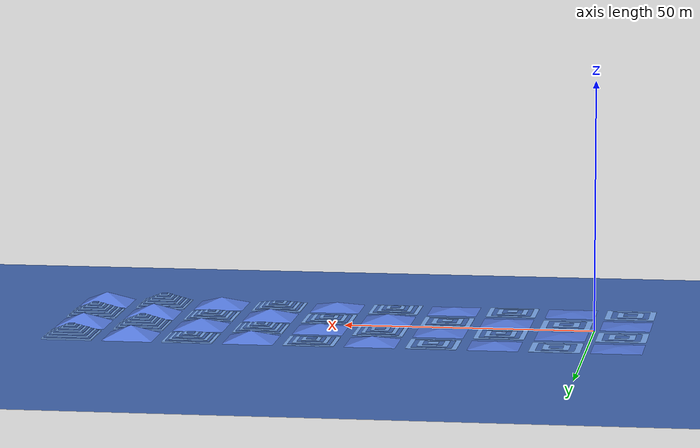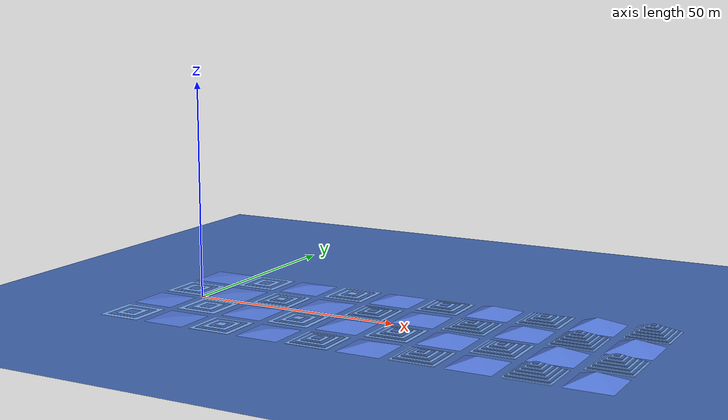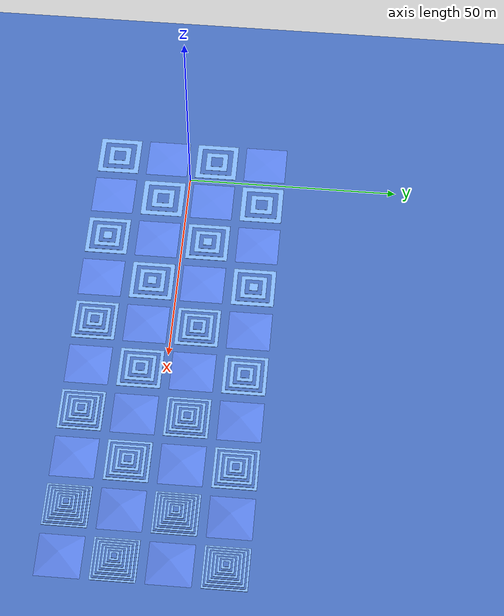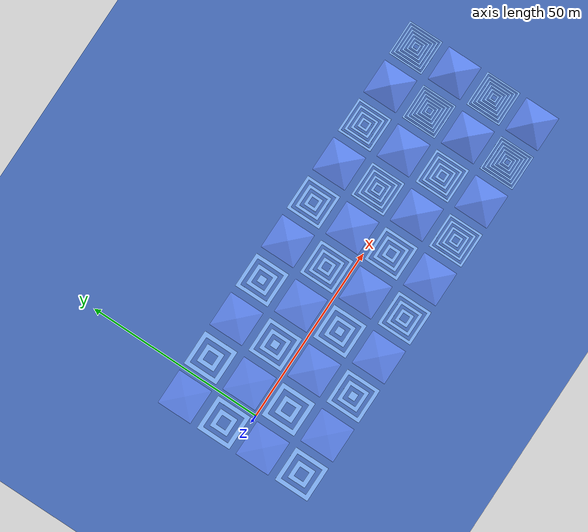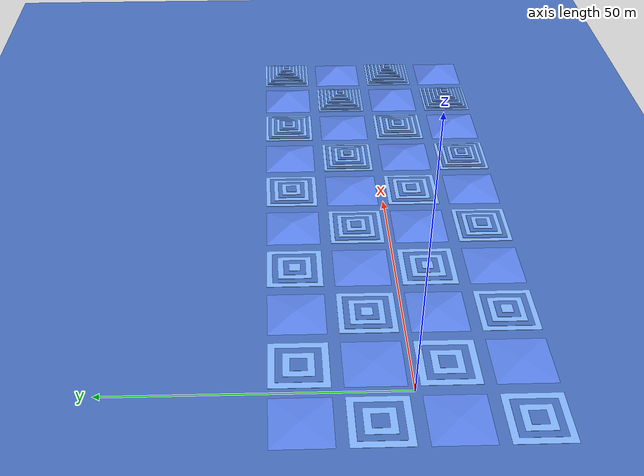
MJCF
<mujoco>
    <extension>
        <plugin plugin="mujoco.sdf.torus">
            <instance name="torus">
                <config key="radius1" value="0.077103"/>
                <config key="radius2" value="0.03"/>
            </instance>
        </plugin>
    </extension>

    <default>
        <default class="kyon_all">
            <joint armature="0.234" frictionloss="4.68" damping="1.7"/>
            <geom condim="3" solref="0.005 1.2" solimp="0.995 0.995 0.001 0.5 2" friction="0.8"/>
        </default>
        <default class="wheels">
            <joint armature="0.234" damping="1.7"/>
            <geom condim="3" solref="0.005 1.2" solimp="0.995 0.995 0.001 0.5 2" friction="0.7 0.005 0.001"/>
        </default>
        <default class="terrain">
            <geom solref="0.004 1.2" solimp="0.995 0.995 0.001 0.5 2" friction="0.7 0.005 0.001" group="1"/>
        </default>
    </default>

    <asset>
        <mesh name="torus">
            <plugin instance="torus"/>
        </mesh>

        <texture type="skybox" builtin="gradient" rgb1="0.3 0.5 0.7" rgb2="0 0 0" width="512" height="3072"/>
        <texture type="cube" name="body" builtin="flat" mark="cross" rgb1="0.8 0.6 0.4" rgb2="0.8 0.6 0.4" markrgb="1 1 1" width="127" height="762"/>
        <texture type="2d" name="grid" builtin="checker" rgb1="0.7 0.8 0.95" rgb2="0.85 0.9 1" width="512" height="512"/>
        <material name="body" texture="body" texuniform="true" rgba="0.8 0.6 0.4 1"/>
        <material name="grid" texture="grid" texuniform="true" rgba="0.5 0.6 0.7 1"/>
        <material name="ground" texture="grid" texuniform="true" rgba="0.35 0.5 0.75 1"/>
        <material name="step_light" texture="grid" texuniform="true" rgba="0.65 0.82 1 1"/>
        <material name="step_dark" texture="grid" texuniform="true" rgba="0.35 0.5 0.75 1"/>
        <material name="slope" texuniform="true" rgba="0.35 0.5 0.9 1"/>
        <mesh name="pyramid_slope_05deg" file="/home/user/forest_ws/src/iit-kyon-ros-pkg/kyon_urdf/meshes/pyramid_slope_05deg_10x10.stl"/>
        <mesh name="pyramid_slope_10deg" file="/home/user/forest_ws/src/iit-kyon-ros-pkg/kyon_urdf/meshes/pyramid_slope_10deg_10x10.stl"/>
        <mesh name="pyramid_slope_15deg" file="/home/user/forest_ws/src/iit-kyon-ros-pkg/kyon_urdf/meshes/pyramid_slope_15deg_10x10.stl"/>
        <mesh name="pyramid_slope_20deg" file="/home/user/forest_ws/src/iit-kyon-ros-pkg/kyon_urdf/meshes/pyramid_slope_20deg_10x10.stl"/>
        <mesh name="pyramid_slope_25deg" file="/home/user/forest_ws/src/iit-kyon-ros-pkg/kyon_urdf/meshes/pyramid_slope_25deg_10x10.stl"/>

    </asset>
    <worldbody>
        <geom name="floor" type="plane" size="0 0 0.05" group="1" material="ground" class="terrain"/>
        <!-- Five pyramidal staircases in a row, increasing step height and decreasing tread width -->
        <!-- Five pyramidal mixed slopes/stairs in a row, increasing difficulty (step height for stairs, slope angle for slopes) -->
        <body name="mixedcourse" pos="0 0 0">
            <!-- Level 0 -->
            <body name="pyramid_lvl0_1" pos="-6 6 0">
                <geom name="lvl0_step_1_0_1" type="box" size="5.0 5.0 0.02" material="step_light" pos="0 0 0.02" class="terrain"/>
                <geom name="lvl0_step_2_0_1" type="box" size="3.8 3.8 0.02" material="step_dark" pos="0 0 0.06" class="terrain"/>
                <geom name="lvl0_step_3_0_1" type="box" size="2.6 2.6 0.02" material="step_light" pos="0 0 0.10" class="terrain"/>
                <geom name="lvl0_step_4_0_1" type="box" size="1.4 1.4 0.02" material="step_dark" pos="0 0 0.14" class="terrain"/>
            </body>
            <body name="pyramid_lvl0_2" pos="-6 -6 0">
                <geom name="lvl0_slope_2" type="mesh" mesh="pyramid_slope_05deg" material="slope" class="terrain"/>
            </body>
            <body name="pyramid_lvl0_3" pos="6 -6 0">
                <geom name="lvl0_step_1_0_3" type="box" size="5.0 5.0 0.02" material="step_light" pos="0 0 0.02" class="terrain"/>
                <geom name="lvl0_step_2_0_3" type="box" size="3.8 3.8 0.02" material="step_dark" pos="0 0 0.06" class="terrain"/>
                <geom name="lvl0_step_3_0_3" type="box" size="2.6 2.6 0.02" material="step_light" pos="0 0 0.10" class="terrain"/>
                <geom name="lvl0_step_4_0_3" type="box" size="1.4 1.4 0.02" material="step_dark" pos="0 0 0.14" class="terrain"/>
            </body>
            <body name="pyramid_lvl0_4" pos="6 6 0">
                <geom name="lvl0_slope_4" type="mesh" mesh="pyramid_slope_05deg" material="slope" class="terrain"/>
            </body>
            <body name="pyramid_lvl0_5" pos="-6 -18 0">
                <geom name="lvl0_step_1_0_5" type="box" size="5.0 5.0 0.02" material="step_light" pos="0 0 0.02" class="terrain"/>
                <geom name="lvl0_step_2_0_5" type="box" size="3.8 3.8 0.02" material="step_dark" pos="0 0 0.06" class="terrain"/>
                <geom name="lvl0_step_3_0_5" type="box" size="2.6 2.6 0.02" material="step_light" pos="0 0 0.10" class="terrain"/>
                <geom name="lvl0_step_4_0_5" type="box" size="1.4 1.4 0.02" material="step_dark" pos="0 0 0.14" class="terrain"/>
            </body>
            <body name="pyramid_lvl0_6" pos="6 -18 0">
                <geom name="lvl0_slope_6" type="mesh" mesh="pyramid_slope_05deg" material="slope" class="terrain"/>
            </body>
            <body name="pyramid_lvl0_7" pos="6 18 0">
                <geom name="lvl0_step_1_0_7" type="box" size="5.0 5.0 0.02" material="step_light" pos="0 0 0.02" class="terrain"/>
                <geom name="lvl0_step_2_0_7" type="box" size="3.8 3.8 0.02" material="step_dark" pos="0 0 0.06" class="terrain"/>
                <geom name="lvl0_step_3_0_7" type="box" size="2.6 2.6 0.02" material="step_light" pos="0 0 0.10" class="terrain"/>
                <geom name="lvl0_step_4_0_7" type="box" size="1.4 1.4 0.02" material="step_dark" pos="0 0 0.14" class="terrain"/>
            </body>
            <body name="pyramid_lvl0_8" pos="-6 18 0">
                <geom name="lvl0_slope_8" type="mesh" mesh="pyramid_slope_05deg" material="slope" class="terrain"/>
            </body>
            <!-- Level 1 -->
            <body name="pyramid_lvl1_1" pos="18 6 0">
                <geom name="lvl1_step_1_1" type="box" size="5.0 5.0 0.04" material="step_light" pos="0 0 0.04" class="terrain"/>
                <geom name="lvl1_step_2_1" type="box" size="4.0 4.0 0.04" material="step_dark" pos="0 0 0.12" class="terrain"/>
                <geom name="lvl1_step_3_1" type="box" size="3.0 3.0 0.04" material="step_light" pos="0 0 0.20" class="terrain"/>
                <geom name="lvl1_step_4_1" type="box" size="2.0 2.0 0.04" material="step_dark" pos="0 0 0.28" class="terrain"/>
                <geom name="lvl1_step_5_1" type="box" size="1.0 1.0 0.04" material="step_light" pos="0 0 0.36" class="terrain"/>
            </body>
            <body name="pyramid_lvl1_2" pos="18 -6 0">
                <geom name="lvl1_slope_2" type="mesh" mesh="pyramid_slope_10deg" material="slope" class="terrain"/>
            </body>
            <body name="pyramid_lvl1_3" pos="30 -6 0">
                <geom name="lvl1_step_1_1_3" type="box" size="5.0 5.0 0.04" material="step_light" pos="0 0 0.04" class="terrain"/>
                <geom name="lvl1_step_2_1_3" type="box" size="4.0 4.0 0.04" material="step_dark" pos="0 0 0.12" class="terrain"/>
                <geom name="lvl1_step_3_1_3" type="box" size="3.0 3.0 0.04" material="step_light" pos="0 0 0.20" class="terrain"/>
                <geom name="lvl1_step_4_1_3" type="box" size="2.0 2.0 0.04" material="step_dark" pos="0 0 0.28" class="terrain"/>
                <geom name="lvl1_step_5_1_3" type="box" size="1.0 1.0 0.04" material="step_light" pos="0 0 0.36" class="terrain"/>
            </body>
            <body name="pyramid_lvl1_4" pos="30 6 0">
                <geom name="lvl1_slope_4" type="mesh" mesh="pyramid_slope_10deg" material="slope" class="terrain"/>
            </body>
            <body name="pyramid_lvl1_5" pos="18 18 0">
                <geom name="lvl1_slope_5" type="mesh" mesh="pyramid_slope_10deg" material="slope" class="terrain"/>
            </body>
            <body name="pyramid_lvl1_6" pos="30 18 0">
                <geom name="lvl1_step_1_1_6" type="box" size="5.0 5.0 0.04" material="step_light" pos="0 0 0.04" class="terrain"/>
                <geom name="lvl1_step_2_1_6" type="box" size="4.0 4.0 0.04" material="step_dark" pos="0 0 0.12" class="terrain"/>
                <geom name="lvl1_step_3_1_6" type="box" size="3.0 3.0 0.04" material="step_light" pos="0 0 0.20" class="terrain"/>
                <geom name="lvl1_step_4_1_6" type="box" size="2.0 2.0 0.04" material="step_dark" pos="0 0 0.28" class="terrain"/>
                <geom name="lvl1_step_5_1_6" type="box" size="1.0 1.0 0.04" material="step_light" pos="0 0 0.36" class="terrain"/>
            </body>
            <body name="pyramid_lvl1_7" pos="18 -18 0">
                <geom name="lvl1_step_1_1_7" type="box" size="5.0 5.0 0.04" material="step_light" pos="0 0 0.04" class="terrain"/>
                <geom name="lvl1_step_2_1_7" type="box" size="4.0 4.0 0.04" material="step_dark" pos="0 0 0.12" class="terrain"/>
                <geom name="lvl1_step_3_1_7" type="box" size="3.0 3.0 0.04" material="step_light" pos="0 0 0.20" class="terrain"/>
                <geom name="lvl1_step_4_1_7" type="box" size="2.0 2.0 0.04" material="step_dark" pos="0 0 0.28" class="terrain"/>
                <geom name="lvl1_step_5_1_7" type="box" size="1.0 1.0 0.04" material="step_light" pos="0 0 0.36" class="terrain"/>
            </body>
            <body name="pyramid_lvl1_8" pos="30 -18 0">
                <geom name="lvl1_slope_8" type="mesh" mesh="pyramid_slope_10deg" material="slope" class="terrain"/>
            </body>
            <!-- Level 2: medium risers, tighter treads, more steps -->
            <body name="pyramid_lvl2_1" pos="42 -6 0">
                <geom name="lvl2_slope_1" type="mesh" mesh="pyramid_slope_15deg" material="slope" class="terrain"/>
            </body>
            <body name="pyramid_lvl2_2" pos="42 6 0">
                <geom name="lvl2_step_1_2_2" type="box" size="5.0 5.0 0.06" material="step_light" pos="0 0 0.06" class="terrain"/>
                <geom name="lvl2_step_2_2_2" type="box" size="4.2 4.2 0.06" material="step_dark" pos="0 0 0.18" class="terrain"/>
                <geom name="lvl2_step_3_2_2" type="box" size="3.4 3.4 0.06" material="step_light" pos="0 0 0.30" class="terrain"/>
                <geom name="lvl2_step_4_2_2" type="box" size="2.6 2.6 0.06" material="step_dark" pos="0 0 0.42" class="terrain"/>
                <geom name="lvl2_step_5_2_2" type="box" size="1.8 1.8 0.06" material="step_light" pos="0 0 0.54" class="terrain"/>
                <geom name="lvl2_step_6_2_2" type="box" size="1.0 1.0 0.06" material="step_dark" pos="0 0 0.66" class="terrain"/>
            </body>
            <body name="pyramid_lvl2_3" pos="54 -6 0">
                <geom name="lvl2_step_1_2_3" type="box" size="5.0 5.0 0.06" material="step_light" pos="0 0 0.06" class="terrain"/>
                <geom name="lvl2_step_2_2_3" type="box" size="4.2 4.2 0.06" material="step_dark" pos="0 0 0.18" class="terrain"/>
                <geom name="lvl2_step_3_2_3" type="box" size="3.4 3.4 0.06" material="step_light" pos="0 0 0.30" class="terrain"/>
                <geom name="lvl2_step_4_2_3" type="box" size="2.6 2.6 0.06" material="step_dark" pos="0 0 0.42" class="terrain"/>
                <geom name="lvl2_step_5_2_3" type="box" size="1.8 1.8 0.06" material="step_light" pos="0 0 0.54" class="terrain"/>
                <geom name="lvl2_step_6_2_3" type="box" size="1.0 1.0 0.06" material="step_dark" pos="0 0 0.66" class="terrain"/>
            </body>
            <body name="pyramid_lvl2_4" pos="54 6 0">
                <geom name="lvl2_slope_4" type="mesh" mesh="pyramid_slope_15deg" material="slope" class="terrain"/>
            </body>
            <body name="pyramid_lvl2_5" pos="42 18 0">
                <geom name="lvl2_slope_5" type="mesh" mesh="pyramid_slope_15deg" material="slope" class="terrain"/>
            </body>
            <body name="pyramid_lvl2_6" pos="54 18 0">
                <geom name="lvl2_step_1_2_6" type="box" size="5.0 5.0 0.06" material="step_light" pos="0 0 0.06" class="terrain"/>
                <geom name="lvl2_step_2_2_6" type="box" size="4.2 4.2 0.06" material="step_dark" pos="0 0 0.18" class="terrain"/>
                <geom name="lvl2_step_3_2_6" type="box" size="3.4 3.4 0.06" material="step_light" pos="0 0 0.30" class="terrain"/>
                <geom name="lvl2_step_4_2_6" type="box" size="2.6 2.6 0.06" material="step_dark" pos="0 0 0.42" class="terrain"/>
                <geom name="lvl2_step_5_2_6" type="box" size="1.8 1.8 0.06" material="step_light" pos="0 0 0.54" class="terrain"/>
                <geom name="lvl2_step_6_2_6" type="box" size="1.0 1.0 0.06" material="step_dark" pos="0 0 0.66" class="terrain"/>
            </body>
            <body name="pyramid_lvl2_7" pos="42 -18 0">
                <geom name="lvl2_step_1_2_7" type="box" size="5.0 5.0 0.06" material="step_light" pos="0 0 0.06" class="terrain"/>
                <geom name="lvl2_step_2_2_7" type="box" size="4.2 4.2 0.06" material="step_dark" pos="0 0 0.18" class="terrain"/>
                <geom name="lvl2_step_3_2_7" type="box" size="3.4 3.4 0.06" material="step_light" pos="0 0 0.30" class="terrain"/>
                <geom name="lvl2_step_4_2_7" type="box" size="2.6 2.6 0.06" material="step_dark" pos="0 0 0.42" class="terrain"/>
                <geom name="lvl2_step_5_2_7" type="box" size="1.8 1.8 0.06" material="step_light" pos="0 0 0.54" class="terrain"/>
                <geom name="lvl2_step_6_2_7" type="box" size="1.0 1.0 0.06" material="step_dark" pos="0 0 0.66" class="terrain"/>
            </body>
            <body name="pyramid_lvl2_8" pos="54 -18 0">
                <geom name="lvl2_slope_8" type="mesh" mesh="pyramid_slope_15deg" material="slope" class="terrain"/>
            </body>
            <!-- Level 3: high risers, minimal tread width, six steps -->
            <body name="pyramid_lvl3_1" pos="66 6 0">
                <geom name="lvl3_step_1_3_1" type="box" size="5.0 5.0 0.08" material="step_light" pos="0 0 0.08" class="terrain"/>
                <geom name="lvl3_step_2_3_1" type="box" size="4.4 4.4 0.08" material="step_dark" pos="0 0 0.24" class="terrain"/>
                <geom name="lvl3_step_3_3_1" type="box" size="3.8 3.8 0.08" material="step_light" pos="0 0 0.40" class="terrain"/>
                <geom name="lvl3_step_4_3_1" type="box" size="3.2 3.2 0.08" material="step_dark" pos="0 0 0.56" class="terrain"/>
                <geom name="lvl3_step_5_3_1" type="box" size="2.6 2.6 0.08" material="step_light" pos="0 0 0.72" class="terrain"/>
                <geom name="lvl3_step_6_3_1" type="box" size="2.0 2.0 0.08" material="step_dark" pos="0 0 0.88" class="terrain"/>
                <geom name="lvl3_step_7_3_1" type="box" size="1.4 1.4 0.08" material="step_light" pos="0 0 1.04" class="terrain"/>
                <geom name="lvl3_step_8_3_1" type="box" size="0.8 0.8 0.08" material="step_dark" pos="0 0 1.20" class="terrain"/>
            </body>
            <body name="pyramid_lvl3_2" pos="66 -6 0">
                <geom name="lvl3_slope_2" type="mesh" mesh="pyramid_slope_20deg" material="slope" class="terrain"/>
            </body>
            <body name="pyramid_lvl3_3" pos="78 6 0">
                <geom name="lvl3_slope_3" type="mesh" mesh="pyramid_slope_20deg" material="slope" class="terrain"/>
            </body>
            <body name="pyramid_lvl3_4" pos="78 -6 0">
                <geom name="lvl3_step_1_3_4" type="box" size="5.0 5.0 0.08" material="step_light" pos="0 0 0.08" class="terrain"/>
                <geom name="lvl3_step_2_3_4" type="box" size="4.4 4.4 0.08" material="step_dark" pos="0 0 0.24" class="terrain"/>
                <geom name="lvl3_step_3_3_4" type="box" size="3.8 3.8 0.08" material="step_light" pos="0 0 0.40" class="terrain"/>
                <geom name="lvl3_step_4_3_4" type="box" size="3.2 3.2 0.08" material="step_dark" pos="0 0 0.56" class="terrain"/>
                <geom name="lvl3_step_5_3_4" type="box" size="2.6 2.6 0.08" material="step_light" pos="0 0 0.72" class="terrain"/>
                <geom name="lvl3_step_6_3_4" type="box" size="2.0 2.0 0.08" material="step_dark" pos="0 0 0.88" class="terrain"/>
                <geom name="lvl3_step_7_3_4" type="box" size="1.4 1.4 0.08" material="step_light" pos="0 0 1.04" class="terrain"/>
                <geom name="lvl3_step_8_3_4" type="box" size="0.8 0.8 0.08" material="step_dark" pos="0 0 1.20" class="terrain"/>
            </body>
            <body name="pyramid_lvl3_5" pos="66 18 0">
                <geom name="lvl3_slope_5" type="mesh" mesh="pyramid_slope_20deg" material="slope" class="terrain"/>
            </body>
            <body name="pyramid_lvl3_6" pos="78 18 0">
                <geom name="lvl3_step_1_3_6" type="box" size="5.0 5.0 0.08" material="step_light" pos="0 0 0.08" class="terrain"/>
                <geom name="lvl3_step_2_3_6" type="box" size="4.4 4.4 0.08" material="step_dark" pos="0 0 0.24" class="terrain"/>
                <geom name="lvl3_step_3_3_6" type="box" size="3.8 3.8 0.08" material="step_light" pos="0 0 0.40" class="terrain"/>
                <geom name="lvl3_step_4_3_6" type="box" size="3.2 3.2 0.08" material="step_dark" pos="0 0 0.56" class="terrain"/>
                <geom name="lvl3_step_5_3_6" type="box" size="2.6 2.6 0.08" material="step_light" pos="0 0 0.72" class="terrain"/>
                <geom name="lvl3_step_6_3_6" type="box" size="2.0 2.0 0.08" material="step_dark" pos="0 0 0.88" class="terrain"/>
                <geom name="lvl3_step_7_3_6" type="box" size="1.4 1.4 0.08" material="step_light" pos="0 0 1.04" class="terrain"/>
                <geom name="lvl3_step_8_3_6" type="box" size="0.8 0.8 0.08" material="step_dark" pos="0 0 1.20" class="terrain"/>
            </body>
            <body name="pyramid_lvl3_7" pos="66 -18 0">
                <geom name="lvl3_step_1_3_7" type="box" size="5.0 5.0 0.08" material="step_light" pos="0 0 0.08" class="terrain"/>
                <geom name="lvl3_step_2_3_7" type="box" size="4.4 4.4 0.08" material="step_dark" pos="0 0 0.24" class="terrain"/>
                <geom name="lvl3_step_3_3_7" type="box" size="3.8 3.8 0.08" material="step_light" pos="0 0 0.40" class="terrain"/>
                <geom name="lvl3_step_4_3_7" type="box" size="3.2 3.2 0.08" material="step_dark" pos="0 0 0.56" class="terrain"/>
                <geom name="lvl3_step_5_3_7" type="box" size="2.6 2.6 0.08" material="step_light" pos="0 0 0.72" class="terrain"/>
                <geom name="lvl3_step_6_3_7" type="box" size="2.0 2.0 0.08" material="step_dark" pos="0 0 0.88" class="terrain"/>
                <geom name="lvl3_step_7_3_7" type="box" size="1.4 1.4 0.08" material="step_light" pos="0 0 1.04" class="terrain"/>
                <geom name="lvl3_step_8_3_7" type="box" size="0.8 0.8 0.08" material="step_dark" pos="0 0 1.20" class="terrain"/>
            </body>
            <body name="pyramid_lvl3_8" pos="78 -18 0">
                <geom name="lvl3_slope_8" type="mesh" mesh="pyramid_slope_20deg" material="slope" class="terrain"/>
            </body>
            <!-- Level 4: extreme risers, very tight treads, seven steps -->
            <body name="pyramid_lvl4_1" pos="90 6 0">
                <geom name="lvl4_step_1_4_1" type="box" size="5.0 5.0 0.1" material="step_light" pos="0 0 0.10" class="terrain"/>
                <geom name="lvl4_step_2_4_1" type="box" size="4.6 4.6 0.1" material="step_dark" pos="0 0 0.30" class="terrain"/>
                <geom name="lvl4_step_3_4_1" type="box" size="4.2 4.2 0.1" material="step_light" pos="0 0 0.50" class="terrain"/>
                <geom name="lvl4_step_4_4_1" type="box" size="3.8 3.8 0.1" material="step_dark" pos="0 0 0.70" class="terrain"/>
                <geom name="lvl4_step_5_4_1" type="box" size="3.4 3.4 0.1" material="step_light" pos="0 0 0.90" class="terrain"/>
                <geom name="lvl4_step_6_4_1" type="box" size="3.0 3.0 0.1" material="step_dark" pos="0 0 1.10" class="terrain"/>
                <geom name="lvl4_step_7_4_1" type="box" size="2.6 2.6 0.1" material="step_light" pos="0 0 1.30" class="terrain"/>
                <geom name="lvl4_step_8_4_1" type="box" size="2.2 2.2 0.1" material="step_dark" pos="0 0 1.50" class="terrain"/>
                <geom name="lvl4_step_9_4_1" type="box" size="1.8 1.8 0.1" material="step_light" pos="0 0 1.70" class="terrain"/>
                <geom name="lvl4_step_10_4_1" type="box" size="1.4 1.4 0.1" material="step_dark" pos="0 0 1.90" class="terrain"/>
                <geom name="lvl4_step_11_4_1" type="box" size="1.0 1.0 0.1" material="step_light" pos="0 0 2.10" class="terrain"/>
                <geom name="lvl4_step_12_4_1" type="box" size="0.6 0.6 0.1" material="step_dark" pos="0 0 2.30" class="terrain"/>
            </body>
            <body name="pyramid_lvl4_2" pos="90 -6 0">
                <geom name="lvl4_slope_2" type="mesh" mesh="pyramid_slope_25deg" material="slope" class="terrain"/>
            </body>
            <body name="pyramid_lvl4_3" pos="102 6 0">
                <geom name="lvl4_slope_3" type="mesh" mesh="pyramid_slope_25deg" material="slope" class="terrain"/>
            </body>
            <body name="pyramid_lvl4_4" pos="102 -6 0">
                <geom name="lvl4_step_1_4_4" type="box" size="5.0 5.0 0.1" material="step_light" pos="0 0 0.10" class="terrain"/>
                <geom name="lvl4_step_2_4_4" type="box" size="4.6 4.6 0.1" material="step_dark" pos="0 0 0.30" class="terrain"/>
                <geom name="lvl4_step_3_4_4" type="box" size="4.2 4.2 0.1" material="step_light" pos="0 0 0.50" class="terrain"/>
                <geom name="lvl4_step_4_4_4" type="box" size="3.8 3.8 0.1" material="step_dark" pos="0 0 0.70" class="terrain"/>
                <geom name="lvl4_step_5_4_4" type="box" size="3.4 3.4 0.1" material="step_light" pos="0 0 0.90" class="terrain"/>
                <geom name="lvl4_step_6_4_4" type="box" size="3.0 3.0 0.1" material="step_dark" pos="0 0 1.10" class="terrain"/>
                <geom name="lvl4_step_7_4_4" type="box" size="2.6 2.6 0.1" material="step_light" pos="0 0 1.30" class="terrain"/>
                <geom name="lvl4_step_8_4_4" type="box" size="2.2 2.2 0.1" material="step_dark" pos="0 0 1.50" class="terrain"/>
                <geom name="lvl4_step_9_4_4" type="box" size="1.8 1.8 0.1" material="step_light" pos="0 0 1.70" class="terrain"/>
                <geom name="lvl4_step_10_4_4" type="box" size="1.4 1.4 0.1" material="step_dark" pos="0 0 1.90" class="terrain"/>
                <geom name="lvl4_step_11_4_4" type="box" size="1.0 1.0 0.1" material="step_light" pos="0 0 2.10" class="terrain"/>
                <geom name="lvl4_step_12_4_4" type="box" size="0.6 0.6 0.1" material="step_dark" pos="0 0 2.30" class="terrain"/>
            </body>
            <body name="pyramid_lvl4_5" pos="90 18 0">
                <geom name="lvl4_slope_5" type="mesh" mesh="pyramid_slope_25deg" material="slope" class="terrain"/>
            </body>
            <body name="pyramid_lvl4_6" pos="102 18 0">
                <geom name="lvl4_step_1_4_6" type="box" size="5.0 5.0 0.1" material="step_light" pos="0 0 0.10" class="terrain"/>
                <geom name="lvl4_step_2_4_6" type="box" size="4.6 4.6 0.1" material="step_dark" pos="0 0 0.30" class="terrain"/>
                <geom name="lvl4_step_3_4_6" type="box" size="4.2 4.2 0.1" material="step_light" pos="0 0 0.50" class="terrain"/>
                <geom name="lvl4_step_4_4_6" type="box" size="3.8 3.8 0.1" material="step_dark" pos="0 0 0.70" class="terrain"/>
                <geom name="lvl4_step_5_4_6" type="box" size="3.4 3.4 0.1" material="step_light" pos="0 0 0.90" class="terrain"/>
                <geom name="lvl4_step_6_4_6" type="box" size="3.0 3.0 0.1" material="step_dark" pos="0 0 1.10" class="terrain"/>
                <geom name="lvl4_step_7_4_6" type="box" size="2.6 2.6 0.1" material="step_light" pos="0 0 1.30" class="terrain"/>
                <geom name="lvl4_step_8_4_6" type="box" size="2.2 2.2 0.1" material="step_dark" pos="0 0 1.50" class="terrain"/>
                <geom name="lvl4_step_9_4_6" type="box" size="1.8 1.8 0.1" material="step_light" pos="0 0 1.70" class="terrain"/>
                <geom name="lvl4_step_10_4_6" type="box" size="1.4 1.4 0.1" material="step_dark" pos="0 0 1.90" class="terrain"/>
                <geom name="lvl4_step_11_4_6" type="box" size="1.0 1.0 0.1" material="step_light" pos="0 0 2.10" class="terrain"/>
                <geom name="lvl4_step_12_4_6" type="box" size="0.6 0.6 0.1" material="step_dark" pos="0 0 2.30" class="terrain"/>
            </body>
            <body name="pyramid_lvl4_7" pos="90 -18 0">
                <geom name="lvl4_step_1_4_7" type="box" size="5.0 5.0 0.1" material="step_light" pos="0 0 0.10" class="terrain"/>
                <geom name="lvl4_step_2_4_7" type="box" size="4.6 4.6 0.1" material="step_dark" pos="0 0 0.30" class="terrain"/>
                <geom name="lvl4_step_3_4_7" type="box" size="4.2 4.2 0.1" material="step_light" pos="0 0 0.50" class="terrain"/>
                <geom name="lvl4_step_4_4_7" type="box" size="3.8 3.8 0.1" material="step_dark" pos="0 0 0.70" class="terrain"/>
                <geom name="lvl4_step_5_4_7" type="box" size="3.4 3.4 0.1" material="step_light" pos="0 0 0.90" class="terrain"/>
                <geom name="lvl4_step_6_4_7" type="box" size="3.0 3.0 0.1" material="step_dark" pos="0 0 1.10" class="terrain"/>
                <geom name="lvl4_step_7_4_7" type="box" size="2.6 2.6 0.1" material="step_light" pos="0 0 1.30" class="terrain"/>
                <geom name="lvl4_step_8_4_7" type="box" size="2.2 2.2 0.1" material="step_dark" pos="0 0 1.50" class="terrain"/>
                <geom name="lvl4_step_9_4_7" type="box" size="1.8 1.8 0.1" material="step_light" pos="0 0 1.70" class="terrain"/>
                <geom name="lvl4_step_10_4_7" type="box" size="1.4 1.4 0.1" material="step_dark" pos="0 0 1.90" class="terrain"/>
                <geom name="lvl4_step_11_4_7" type="box" size="1.0 1.0 0.1" material="step_light" pos="0 0 2.10" class="terrain"/>
                <geom name="lvl4_step_12_4_7" type="box" size="0.6 0.6 0.1" material="step_dark" pos="0 0 2.30" class="terrain"/>
            </body>
            <body name="pyramid_lvl4_8" pos="102 -18 0">
                <geom name="lvl4_slope_8" type="mesh" mesh="pyramid_slope_25deg" material="slope" class="terrain"/>
            </body>
        </body>
    </worldbody>
    <visual>
    	<headlight ambient="0.5 0.5 0.5"/>
    </visual>
</mujoco>
